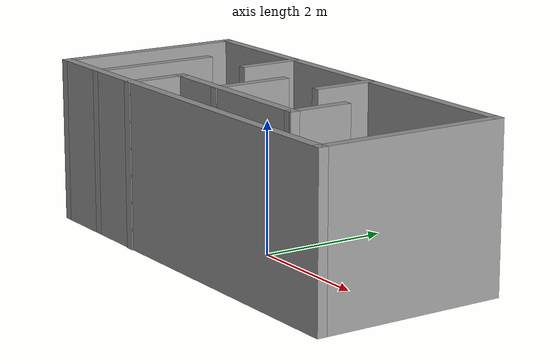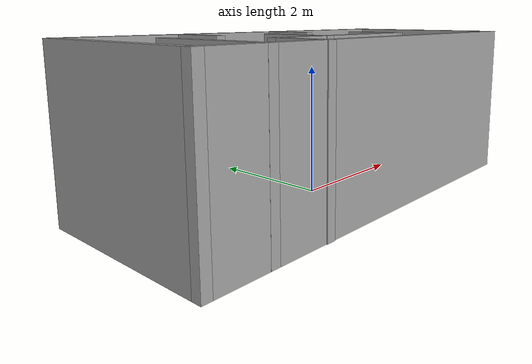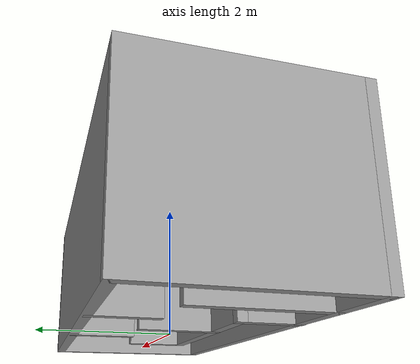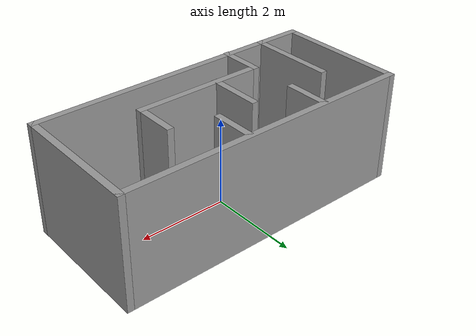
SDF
<?xml version='1.0'?>
<sdf version='1.7'>
  <model name='my_model'>
    <model name='my_world'>
      <pose>3e-06 -0 0 0 -0 0</pose>
      <link name='Wall_0'>
        <collision name='Wall_0_Collision'>
          <geometry>
            <box>
              <size>6.75 0.15 2.5</size>
            </box>
          </geometry>
          <pose>0 0 1.25 0 -0 0</pose>
        </collision>
        <visual name='Wall_0_Visual'>
          <pose>0 0 1.25 0 -0 0</pose>
          <geometry>
            <box>
              <size>6.75 0.15 2.5</size>
            </box>
          </geometry>
          <material>
            <script>
              <uri>file://media/materials/scripts/gazebo.material</uri>
              <name>Gazebo/Grey</name>
            </script>
            <ambient>1 1 1 1</ambient>
          </material>
          <meta>
            <layer>0</layer>
          </meta>
        </visual>
        <pose>0 1.43289 0 0 -0 0</pose>
      </link>
      <link name='Wall_1'>
        <collision name='Wall_1_Collision'>
          <geometry>
            <box>
              <size>3 0.15 2.5</size>
            </box>
          </geometry>
          <pose>0 0 1.25 0 -0 0</pose>
        </collision>
        <visual name='Wall_1_Visual'>
          <pose>0 0 1.25 0 -0 0</pose>
          <geometry>
            <box>
              <size>3 0.15 2.5</size>
            </box>
          </geometry>
          <material>
            <script>
              <uri>file://media/materials/scripts/gazebo.material</uri>
              <name>Gazebo/Grey</name>
            </script>
            <ambient>1 1 1 1</ambient>
          </material>
          <meta>
            <layer>0</layer>
          </meta>
        </visual>
        <pose>3.3 0.007892 0 0 -0 -1.5708</pose>
      </link>
      <link name='Wall_10'>
        <collision name='Wall_10_Collision'>
          <geometry>
            <box>
              <size>3 0.15 2.5</size>
            </box>
          </geometry>
          <pose>0 0 1.25 0 -0 0</pose>
        </collision>
        <visual name='Wall_10_Visual'>
          <pose>0 0 1.25 0 -0 0</pose>
          <geometry>
            <box>
              <size>3 0.15 2.5</size>
            </box>
          </geometry>
          <material>
            <script>
              <uri>file://media/materials/scripts/gazebo.material</uri>
              <name>Gazebo/Grey</name>
            </script>
            <ambient>1 1 1 1</ambient>
          </material>
          <meta>
            <layer>0</layer>
          </meta>
        </visual>
        <pose>0.045605 -0.582892 0 0 -0 0</pose>
      </link>
      <link name='Wall_11'>
        <collision name='Wall_11_Collision'>
          <geometry>
            <box>
              <size>1 0.15 2.5</size>
            </box>
          </geometry>
          <pose>0 0 1.25 0 -0 0</pose>
        </collision>
        <visual name='Wall_11_Visual'>
          <pose>0 0 1.25 0 -0 0</pose>
          <geometry>
            <box>
              <size>1 0.15 2.5</size>
            </box>
          </geometry>
          <material>
            <script>
              <uri>file://media/materials/scripts/gazebo.material</uri>
              <name>Gazebo/Grey</name>
            </script>
            <ambient>1 1 1 1</ambient>
          </material>
          <meta>
            <layer>0</layer>
          </meta>
        </visual>
        <pose>1.4706 -0.157892 0 0 -0 1.5708</pose>
      </link>
      <link name='Wall_15'>
        <collision name='Wall_15_Collision'>
          <geometry>
            <box>
              <size>1.25 0.15 2.5</size>
            </box>
          </geometry>
          <pose>0 0 1.25 0 -0 0</pose>
        </collision>
        <visual name='Wall_15_Visual'>
          <pose>0 0 1.25 0 -0 0</pose>
          <geometry>
            <box>
              <size>1.25 0.15 2.5</size>
            </box>
          </geometry>
          <material>
            <script>
              <uri>file://media/materials/scripts/gazebo.material</uri>
              <name>Gazebo/Grey</name>
            </script>
            <ambient>1 1 1 1</ambient>
          </material>
          <meta>
            <layer>0</layer>
          </meta>
        </visual>
        <pose>-0.373724 -0.043573 0 0 -0 1.5708</pose>
      </link>
      <link name='Wall_17'>
        <collision name='Wall_17_Collision'>
          <geometry>
            <box>
              <size>1 0.15 2.5</size>
            </box>
          </geometry>
          <pose>0 0 1.25 0 -0 0</pose>
        </collision>
        <visual name='Wall_17_Visual'>
          <pose>0 0 1.25 0 -0 0</pose>
          <geometry>
            <box>
              <size>1 0.15 2.5</size>
            </box>
          </geometry>
          <material>
            <script>
              <uri>file://media/materials/scripts/gazebo.material</uri>
              <name>Gazebo/Grey</name>
            </script>
            <ambient>1 1 1 1</ambient>
          </material>
          <meta>
            <layer>0</layer>
          </meta>
        </visual>
        <pose>0.495841 0.977646 0 0 -0 -1.5708</pose>
      </link>
      <link name='Wall_2'>
        <collision name='Wall_2_Collision'>
          <geometry>
            <box>
              <size>6.75 0.15 2.5</size>
            </box>
          </geometry>
          <pose>0 0 1.25 0 -0 0</pose>
        </collision>
        <visual name='Wall_2_Visual'>
          <pose>0 0 1.25 0 -0 0</pose>
          <geometry>
            <box>
              <size>6.75 0.15 2.5</size>
            </box>
          </geometry>
          <material>
            <script>
              <uri>file://media/materials/scripts/gazebo.material</uri>
              <name>Gazebo/Grey</name>
            </script>
            <ambient>1 1 1 1</ambient>
          </material>
          <meta>
            <layer>0</layer>
          </meta>
        </visual>
        <pose>0 -1.41711 0 0 -0 3.14159</pose>
      </link>
      <link name='Wall_3'>
        <collision name='Wall_3_Collision'>
          <geometry>
            <box>
              <size>3 0.15 2.5</size>
            </box>
          </geometry>
          <pose>0 0 1.25 0 -0 0</pose>
        </collision>
        <visual name='Wall_3_Visual'>
          <pose>0 0 1.25 0 -0 0</pose>
          <geometry>
            <box>
              <size>3 0.15 2.5</size>
            </box>
          </geometry>
          <material>
            <script>
              <uri>file://media/materials/scripts/gazebo.material</uri>
              <name>Gazebo/Grey</name>
            </script>
            <ambient>1 1 1 1</ambient>
          </material>
          <meta>
            <layer>0</layer>
          </meta>
        </visual>
        <pose>-3.3 0.007892 0 0 -0 1.5708</pose>
      </link>
      <link name='Wall_5'>
        <collision name='Wall_5_Collision'>
          <geometry>
            <box>
              <size>2 0.15 2.5</size>
            </box>
          </geometry>
          <pose>0 0 1.25 0 -0 0</pose>
        </collision>
        <visual name='Wall_5_Visual'>
          <pose>0 0 1.25 0 -0 0</pose>
          <geometry>
            <box>
              <size>2 0.15 2.5</size>
            </box>
          </geometry>
          <material>
            <script>
              <uri>file://media/materials/scripts/gazebo.material</uri>
              <name>Gazebo/Grey</name>
            </script>
            <ambient>1 1 1 1</ambient>
          </material>
          <meta>
            <layer>0</layer>
          </meta>
        </visual>
        <pose>-2.3397 -0.492769 0 0 -0 1.5708</pose>
      </link>
      <link name='Wall_7'>
        <collision name='Wall_7_Collision'>
          <geometry>
            <box>
              <size>1 0.15 2.5</size>
            </box>
          </geometry>
          <pose>0 0 1.25 0 -0 0</pose>
        </collision>
        <visual name='Wall_7_Visual'>
          <pose>0 0 1.25 0 -0 0</pose>
          <geometry>
            <box>
              <size>1 0.15 2.5</size>
            </box>
          </geometry>
          <material>
            <script>
              <uri>file://media/materials/scripts/gazebo.material</uri>
              <name>Gazebo/Grey</name>
            </script>
            <ambient>1 1 1 1</ambient>
          </material>
          <meta>
            <layer>0</layer>
          </meta>
        </visual>
        <pose>-1.39452 0.970085 0 0 -0 -1.5708</pose>
      </link>
      <link name='Wall_9'>
        <collision name='Wall_9_Collision'>
          <geometry>
            <box>
              <size>1 0.15 2.5</size>
            </box>
          </geometry>
          <pose>0 0 1.25 0 -0 0</pose>
        </collision>
        <visual name='Wall_9_Visual'>
          <pose>0 0 1.25 0 -0 0</pose>
          <geometry>
            <box>
              <size>1 0.15 2.5</size>
            </box>
          </geometry>
          <material>
            <script>
              <uri>file://media/materials/scripts/gazebo.material</uri>
              <name>Gazebo/Grey</name>
            </script>
            <ambient>1 1 1 1</ambient>
          </material>
          <meta>
            <layer>0</layer>
          </meta>
        </visual>
        <pose>-1.37939 -1.00789 0 0 -0 1.5708</pose>
      </link>
      <static>1</static>
    </model>
    <static>0</static>
    <allow_auto_disable>1</allow_auto_disable>
  </model>
</sdf>
